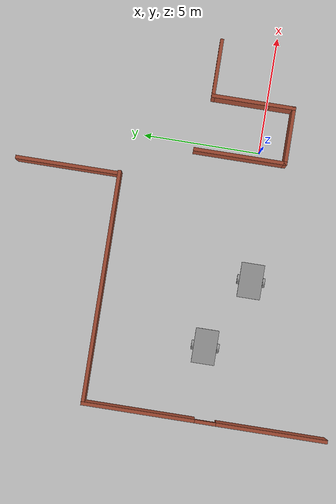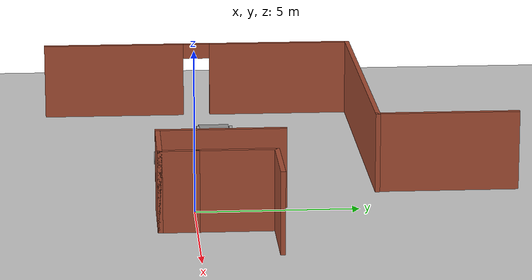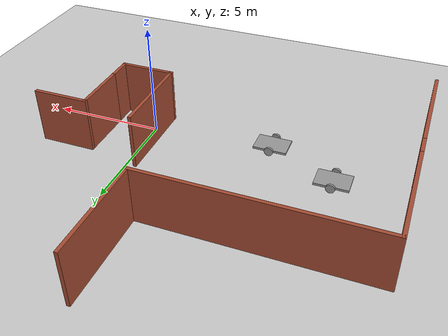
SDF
<sdf version="1.6">
 <world name="default">
  <model name="ground_plane">
   <static>1</static>
   <link name="link">
    <collision name="collision">
     <geometry><plane><normal>0 0 1</normal><size>100 100</size></plane></geometry>
     <surface><friction><ode><mu>100</mu><mu2>50</mu2></ode></friction></surface>
    </collision>
    <visual name="visual">
     <cast_shadows>0</cast_shadows>
     <geometry><plane><normal>0 0 1</normal><size>100 100</size></plane></geometry>
     <material>
      <script><uri>file://media/materials/scripts/gazebo.material</uri><name>Gazebo/Grey</name></script>
     </material>
    </visual>
   </link>
  </model>
  <model name="robot_0">
   <link name="link_0">
    <pose>-8.55663 1 0.2 0 -0 0</pose>
    <inertial>
     <mass>1</mass>
     <inertia>
      <ixx>0.166667</ixx>
      <ixy>0</ixy>
      <ixz>0</ixz>
      <iyy>0.166667</iyy>
      <iyz>0</iyz>
      <izz>0.166667</izz>
     </inertia>
    </inertial>
    <visual name="visual">
     <geometry><box><size>1.5 1 0.1</size></box></geometry>
     <material>
      <lighting>1</lighting>
      <script><uri>file://media/materials/scripts/gazebo.material</uri><name>Gazebo/Grey</name></script>
      <ambient>0.3 0.3 0.3 1</ambient>
      <diffuse>0.7 0.7 0.7 1</diffuse>
      <specular>0.01 0.01 0.01 1</specular>
      <emissive>0 0 0 1</emissive>
      <shader type="vertex"><normal_map>__default__</normal_map></shader>
     </material>
    </visual>
    <collision name="collision">
     <geometry><box><size>1.5 1 0.1</size></box></geometry>
     <surface>
      <friction>
       <ode><mu>1</mu><mu2>1</mu2><fdir1>0 0 0</fdir1><slip1>0</slip1><slip2>0</slip2></ode>
       <torsional>
        <coefficient>1</coefficient>
        <patch_radius>0</patch_radius>
        <surface_radius>0</surface_radius>
        <use_patch_radius>1</use_patch_radius>
        <ode><slip>0</slip></ode>
       </torsional>
      </friction>
      <bounce><restitution_coefficient>0</restitution_coefficient><threshold>1e+06</threshold></bounce>
      <contact>
       <collide_without_contact>0</collide_without_contact>
       <collide_without_contact_bitmask>1</collide_without_contact_bitmask>
       <collide_bitmask>1</collide_bitmask>
       <ode>
        <soft_cfm>0</soft_cfm>
        <soft_erp>0.2</soft_erp>
        <kp>1e+13</kp>
        <kd>1</kd>
        <max_vel>0.01</max_vel>
        <min_depth>0</min_depth>
       </ode>
       <bullet>
        <split_impulse>1</split_impulse>
        <split_impulse_penetration_threshold>-0.01</split_impulse_penetration_threshold>
        <soft_cfm>0</soft_cfm>
        <soft_erp>0.2</soft_erp>
        <kp>1e+13</kp>
        <kd>1</kd>
       </bullet>
      </contact>
     </surface>
    </collision>
   </link>
   <link name="link_1">
    <pose>-8.55663 0.449981 0.2 1.5707 -0 0</pose>
    <inertial>
     <mass>1</mass>
     <inertia><ixx>0.145833</ixx><ixy>0</ixy><ixz>0</ixz><iyy>0.145833</iyy><iyz>0</iyz><izz>0.125</izz></inertia>
    </inertial>
    <visual name="visual">
     <geometry><cylinder><radius>0.2</radius><length>0.1</length></cylinder></geometry>
     <material>
      <lighting>1</lighting>
      <script><uri>file://media/materials/scripts/gazebo.material</uri><name>Gazebo/Grey</name></script>
      <ambient>0.3 0.3 0.3 1</ambient>
      <diffuse>0.7 0.7 0.7 1</diffuse>
      <specular>0.01 0.01 0.01 1</specular>
      <emissive>0 0 0 1</emissive>
      <shader type="vertex"><normal_map>__default__</normal_map></shader>
     </material>
    </visual>
    <collision name="collision">
     <geometry><cylinder><radius>0.2</radius><length>0.1</length></cylinder></geometry>
     <surface>
      <friction>
       <ode><mu>1</mu><mu2>1</mu2><fdir1>0 0 0</fdir1><slip1>0</slip1><slip2>0</slip2></ode>
       <torsional>
        <coefficient>1</coefficient>
        <patch_radius>0</patch_radius>
        <surface_radius>0</surface_radius>
        <use_patch_radius>1</use_patch_radius>
        <ode><slip>0</slip></ode>
       </torsional>
      </friction>
      <bounce><restitution_coefficient>0</restitution_coefficient><threshold>1e+06</threshold></bounce>
      <contact>
       <collide_without_contact>0</collide_without_contact>
       <collide_without_contact_bitmask>1</collide_without_contact_bitmask>
       <collide_bitmask>1</collide_bitmask>
       <ode>
        <soft_cfm>0</soft_cfm>
        <soft_erp>0.2</soft_erp>
        <kp>1e+13</kp>
        <kd>1</kd>
        <max_vel>0.01</max_vel>
        <min_depth>0</min_depth>
       </ode>
       <bullet>
        <split_impulse>1</split_impulse>
        <split_impulse_penetration_threshold>-0.01</split_impulse_penetration_threshold>
        <soft_cfm>0</soft_cfm>
        <soft_erp>0.2</soft_erp>
        <kp>1e+13</kp>
        <kd>1</kd>
       </bullet>
      </contact>
     </surface>
    </collision>
   </link>
   <link name="link_1_clone">
    <pose>-8.55663 1.55002 0.2 1.5707 -0 0</pose>
    <inertial>
     <mass>1</mass>
     <inertia><ixx>0.145833</ixx><ixy>0</ixy><ixz>0</ixz><iyy>0.145833</iyy><iyz>0</iyz><izz>0.125</izz></inertia>
    </inertial>
    <visual name="visual">
     <geometry><cylinder><radius>0.2</radius><length>0.1</length></cylinder></geometry>
     <material>
      <lighting>1</lighting>
      <script><uri>file://media/materials/scripts/gazebo.material</uri><name>Gazebo/Grey</name></script>
      <ambient>0.3 0.3 0.3 1</ambient>
      <diffuse>0.7 0.7 0.7 1</diffuse>
      <specular>0.01 0.01 0.01 1</specular>
      <emissive>0 0 0 1</emissive>
      <shader type="vertex"><normal_map>__default__</normal_map></shader>
     </material>
    </visual>
    <collision name="collision">
     <geometry><cylinder><radius>0.2</radius><length>0.1</length></cylinder></geometry>
     <surface>
      <friction>
       <ode><mu>1</mu><mu2>1</mu2><fdir1>0 0 0</fdir1><slip1>0</slip1><slip2>0</slip2></ode>
       <torsional>
        <coefficient>1</coefficient>
        <patch_radius>0</patch_radius>
        <surface_radius>0</surface_radius>
        <use_patch_radius>1</use_patch_radius>
        <ode><slip>0</slip></ode>
       </torsional>
      </friction>
      <bounce><restitution_coefficient>0</restitution_coefficient><threshold>1e+06</threshold></bounce>
      <contact>
       <collide_without_contact>0</collide_without_contact>
       <collide_without_contact_bitmask>1</collide_without_contact_bitmask>
       <collide_bitmask>1</collide_bitmask>
       <ode>
        <soft_cfm>0</soft_cfm>
        <soft_erp>0.2</soft_erp>
        <kp>1e+13</kp>
        <kd>1</kd>
        <max_vel>0.01</max_vel>
        <min_depth>0</min_depth>
       </ode>
       <bullet>
        <split_impulse>1</split_impulse>
        <split_impulse_penetration_threshold>-0.01</split_impulse_penetration_threshold>
        <soft_cfm>0</soft_cfm>
        <soft_erp>0.2</soft_erp>
        <kp>1e+13</kp>
        <kd>1</kd>
       </bullet>
      </contact>
     </surface>
    </collision>
   </link>
   <link name="link_2">
    <pose>-9 1 0.1 0 -0 0</pose>
    <inertial>
     <mass>1</mass>
     <inertia><ixx>0.1</ixx><ixy>0</ixy><ixz>0</ixz><iyy>0.1</iyy><iyz>0</iyz><izz>0.1</izz></inertia>
    </inertial>
    <visual name="visual">
     <geometry><sphere><radius>0.1</radius></sphere></geometry>
     <material>
      <lighting>1</lighting>
      <script><uri>file://media/materials/scripts/gazebo.material</uri><name>Gazebo/Grey</name></script>
      <ambient>0.3 0.3 0.3 1</ambient>
      <diffuse>0.7 0.7 0.7 1</diffuse>
      <specular>0.01 0.01 0.01 1</specular>
      <emissive>0 0 0 1</emissive>
      <shader type="vertex"><normal_map>__default__</normal_map></shader>
     </material>
    </visual>
    <visual name="ModelPreview_0::link_2::visual_1">
     <geometry><sphere><radius>0.1</radius></sphere></geometry>
     <material>
      <lighting>1</lighting>
      <script><uri>file://media/materials/scripts/gazebo.material</uri><name>Gazebo/Grey</name></script>
      <ambient>0.3 0.3 0.3 1</ambient>
      <diffuse>0.7 0.7 0.7 1</diffuse>
      <specular>0.01 0.01 0.01 1</specular>
      <emissive>0 0 0 1</emissive>
      <shader type="vertex"><normal_map>__default__</normal_map></shader>
     </material>
    </visual>
    <collision name="collision">
     <geometry><sphere><radius>0.1</radius></sphere></geometry>
     <surface>
      <friction>
       <ode><mu>1</mu><mu2>1</mu2><fdir1>0 0 0</fdir1><slip1>0</slip1><slip2>0</slip2></ode>
       <torsional>
        <coefficient>1</coefficient>
        <patch_radius>0</patch_radius>
        <surface_radius>0</surface_radius>
        <use_patch_radius>1</use_patch_radius>
        <ode><slip>0</slip></ode>
       </torsional>
      </friction>
      <bounce><restitution_coefficient>0</restitution_coefficient><threshold>1e+06</threshold></bounce>
      <contact>
       <collide_without_contact>0</collide_without_contact>
       <collide_without_contact_bitmask>1</collide_without_contact_bitmask>
       <collide_bitmask>1</collide_bitmask>
       <ode>
        <soft_cfm>0</soft_cfm>
        <soft_erp>0.2</soft_erp>
        <kp>1e+13</kp>
        <kd>1</kd>
        <max_vel>0.01</max_vel>
        <min_depth>0</min_depth>
       </ode>
       <bullet>
        <split_impulse>1</split_impulse>
        <split_impulse_penetration_threshold>-0.01</split_impulse_penetration_threshold>
        <soft_cfm>0</soft_cfm>
        <soft_erp>0.2</soft_erp>
        <kp>1e+13</kp>
        <kd>1</kd>
       </bullet>
      </contact>
     </surface>
    </collision>
   </link>
   <link name="link_2_clone">
    <pose>-8 1 0.1 0 -0 0</pose>
    <inertial>
     <mass>1</mass>
     <inertia><ixx>0.1</ixx><ixy>0</ixy><ixz>0</ixz><iyy>0.1</iyy><iyz>0</iyz><izz>0.1</izz></inertia>
    </inertial>
    <visual name="visual">
     <geometry><sphere><radius>0.1</radius></sphere></geometry>
     <material>
      <lighting>1</lighting>
      <script><uri>file://media/materials/scripts/gazebo.material</uri><name>Gazebo/Grey</name></script>
      <ambient>0.3 0.3 0.3 1</ambient>
      <diffuse>0.7 0.7 0.7 1</diffuse>
      <specular>0.01 0.01 0.01 1</specular>
      <emissive>0 0 0 1</emissive>
      <shader type="vertex"><normal_map>__default__</normal_map></shader>
     </material>
    </visual>
    <visual name="visual_1">
     <geometry><sphere><radius>0.1</radius></sphere></geometry>
     <material>
      <lighting>1</lighting>
      <script><uri>file://media/materials/scripts/gazebo.material</uri><name>Gazebo/Grey</name></script>
      <ambient>0.3 0.3 0.3 1</ambient>
      <diffuse>0.7 0.7 0.7 1</diffuse>
      <specular>0.01 0.01 0.01 1</specular>
      <emissive>0 0 0 1</emissive>
      <shader type="vertex"><normal_map>__default__</normal_map></shader>
     </material>
    </visual>
    <collision name="collision">
     <geometry><sphere><radius>0.1</radius></sphere></geometry>
     <surface>
      <friction>
       <ode><mu>1</mu><mu2>1</mu2><fdir1>0 0 0</fdir1><slip1>0</slip1><slip2>0</slip2></ode>
       <torsional>
        <coefficient>1</coefficient>
        <patch_radius>0</patch_radius>
        <surface_radius>0</surface_radius>
        <use_patch_radius>1</use_patch_radius>
        <ode><slip>0</slip></ode>
       </torsional>
      </friction>
      <bounce><restitution_coefficient>0</restitution_coefficient><threshold>1e+06</threshold></bounce>
      <contact>
       <collide_without_contact>0</collide_without_contact>
       <collide_without_contact_bitmask>1</collide_without_contact_bitmask>
       <collide_bitmask>1</collide_bitmask>
       <ode>
        <soft_cfm>0</soft_cfm>
        <soft_erp>0.2</soft_erp>
        <kp>1e+13</kp>
        <kd>1</kd>
        <max_vel>0.01</max_vel>
        <min_depth>0</min_depth>
       </ode>
       <bullet>
        <split_impulse>1</split_impulse>
        <split_impulse_penetration_threshold>-0.01</split_impulse_penetration_threshold>
        <soft_cfm>0</soft_cfm>
        <soft_erp>0.2</soft_erp>
        <kp>1e+13</kp>
        <kd>1</kd>
       </bullet>
      </contact>
     </surface>
    </collision>
   </link>
   <joint name="link_0_JOINT_0" type="revolute">
    <parent>link_0</parent>
    <child>link_1</child>
    <axis>
     <xyz>0 0 1</xyz>
     <use_parent_model_frame>0</use_parent_model_frame>
     <limit>
      <lower>-1.79769e+308</lower>
      <upper>1.79769e+308</upper>
      <effort>-1</effort>
      <velocity>-1</velocity>
     </limit>
     <dynamics>
      <spring_reference>0</spring_reference>
      <spring_stiffness>0</spring_stiffness>
      <damping>0</damping>
      <friction>0</friction>
     </dynamics>
    </axis>
    <physics>
     <ode><limit><cfm>0</cfm><erp>0.2</erp></limit><suspension><cfm>0</cfm><erp>0.2</erp></suspension></ode>
    </physics>
   </joint>
   <joint name="link_0_JOINT_1" type="revolute">
    <parent>link_0</parent>
    <child>link_1_clone</child>
    <axis>
     <xyz>0 0 1</xyz>
     <use_parent_model_frame>0</use_parent_model_frame>
     <limit>
      <lower>-1.79769e+308</lower>
      <upper>1.79769e+308</upper>
      <effort>-1</effort>
      <velocity>-1</velocity>
     </limit>
     <dynamics>
      <spring_reference>0</spring_reference>
      <spring_stiffness>0</spring_stiffness>
      <damping>0</damping>
      <friction>0</friction>
     </dynamics>
    </axis>
    <physics>
     <ode><limit><cfm>0</cfm><erp>0.2</erp></limit><suspension><cfm>0</cfm><erp>0.2</erp></suspension></ode>
    </physics>
   </joint>
   <joint name="link_0_JOINT_2" type="revolute">
    <parent>link_0</parent>
    <child>link_2</child>
    <axis>
     <xyz>0 1 0</xyz>
     <use_parent_model_frame>0</use_parent_model_frame>
     <limit>
      <lower>-1.79769e+308</lower>
      <upper>1.79769e+308</upper>
      <effort>-1</effort>
      <velocity>-1</velocity>
     </limit>
     <dynamics>
      <spring_reference>0</spring_reference>
      <spring_stiffness>0</spring_stiffness>
      <damping>0</damping>
      <friction>0</friction>
     </dynamics>
    </axis>
    <physics>
     <ode><limit><cfm>0</cfm><erp>0.2</erp></limit><suspension><cfm>0</cfm><erp>0.2</erp></suspension></ode>
    </physics>
   </joint>
   <joint name="link_0_JOINT_3" type="revolute">
    <parent>link_0</parent>
    <child>link_2_clone</child>
    <axis>
     <xyz>0 1 0</xyz>
     <use_parent_model_frame>0</use_parent_model_frame>
     <limit>
      <lower>-1.79769e+308</lower>
      <upper>1.79769e+308</upper>
      <effort>-1</effort>
      <velocity>-1</velocity>
     </limit>
     <dynamics>
      <spring_reference>0</spring_reference>
      <spring_stiffness>0</spring_stiffness>
      <damping>0</damping>
      <friction>0</friction>
     </dynamics>
    </axis>
    <physics>
     <ode><limit><cfm>0</cfm><erp>0.2</erp></limit><suspension><cfm>0</cfm><erp>0.2</erp></suspension></ode>
    </physics>
   </joint>
   <static>0</static>
   <pose>0.00226 0.01205 -6.2e-05 0 8e-06 0.001422</pose>
  </model>
  <model name="apartment_model">
   <link name="Wall_1">
    <pose>-13.3 2.8 0 0 -0 3.14159</pose>
    <visual name="Wall_1_Visual">
     <pose>0 0 1.25 0 -0 0</pose>
     <geometry><box><size>10 0.15 2.5</size></box></geometry>
     <material>
      <script><uri>file://media/materials/scripts/gazebo.material</uri><name>Gazebo/Bricks</name></script>
      <ambient>1 1 1 1</ambient>
      <diffuse>1 1 1 1</diffuse>
      <specular>0.2 0.2 0.2 1</specular>
      <emissive>0 0 0 1</emissive>
     </material>
    </visual>
    <collision name="Wall_1_Collision">
     <pose>0 0 1.25 0 -0 0</pose>
     <geometry><box><size>10 0.15 2.5</size></box></geometry>
     <surface>
      <friction>
       <ode><mu>1</mu><mu2>1</mu2><fdir1>0 0 0</fdir1><slip1>0</slip1><slip2>0</slip2></ode>
       <torsional>
        <coefficient>1</coefficient>
        <patch_radius>0</patch_radius>
        <surface_radius>0</surface_radius>
        <use_patch_radius>1</use_patch_radius>
        <ode><slip>0</slip></ode>
       </torsional>
      </friction>
      <bounce><restitution_coefficient>0</restitution_coefficient><threshold>1e+06</threshold></bounce>
      <contact>
       <collide_without_contact>0</collide_without_contact>
       <collide_without_contact_bitmask>1</collide_without_contact_bitmask>
       <collide_bitmask>1</collide_bitmask>
       <ode>
        <soft_cfm>0</soft_cfm>
        <soft_erp>0.2</soft_erp>
        <kp>1e+13</kp>
        <kd>1</kd>
        <max_vel>0.01</max_vel>
        <min_depth>0</min_depth>
       </ode>
       <bullet>
        <split_impulse>1</split_impulse>
        <split_impulse_penetration_threshold>-0.01</split_impulse_penetration_threshold>
        <soft_cfm>0</soft_cfm>
        <soft_erp>0.2</soft_erp>
        <kp>1e+13</kp>
        <kd>1</kd>
       </bullet>
      </contact>
     </surface>
    </collision>
   </link>
   <link name="Wall_10">
    <pose>-4.575 -3.5 0 0 0 -1.5708</pose>
    <visual name="Wall_10_Visual">
     <pose>0 0 1.25 0 -0 0</pose>
     <geometry><box><size>1.25 0.15 2.5</size></box></geometry>
     <material>
      <script><uri>file://media/materials/scripts/gazebo.material</uri><name>Gazebo/Bricks</name></script>
      <ambient>1 1 1 1</ambient>
      <diffuse>1 1 1 1</diffuse>
      <specular>0.2 0.2 0.2 1</specular>
      <emissive>0 0 0 1</emissive>
     </material>
    </visual>
    <collision name="Wall_10_Collision">
     <pose>0 0 1.25 0 -0 0</pose>
     <geometry><box><size>1.25 0.15 2.5</size></box></geometry>
     <surface>
      <friction>
       <ode><mu>1</mu><mu2>1</mu2><fdir1>0 0 0</fdir1><slip1>0</slip1><slip2>0</slip2></ode>
       <torsional>
        <coefficient>1</coefficient>
        <patch_radius>0</patch_radius>
        <surface_radius>0</surface_radius>
        <use_patch_radius>1</use_patch_radius>
        <ode><slip>0</slip></ode>
       </torsional>
      </friction>
      <bounce><restitution_coefficient>0</restitution_coefficient><threshold>1e+06</threshold></bounce>
      <contact>
       <collide_without_contact>0</collide_without_contact>
       <collide_without_contact_bitmask>1</collide_without_contact_bitmask>
       <collide_bitmask>1</collide_bitmask>
       <ode>
        <soft_cfm>0</soft_cfm>
        <soft_erp>0.2</soft_erp>
        <kp>1e+13</kp>
        <kd>1</kd>
        <max_vel>0.01</max_vel>
        <min_depth>0</min_depth>
       </ode>
       <bullet>
        <split_impulse>1</split_impulse>
        <split_impulse_penetration_threshold>-0.01</split_impulse_penetration_threshold>
        <soft_cfm>0</soft_cfm>
        <soft_erp>0.2</soft_erp>
        <kp>1e+13</kp>
        <kd>1</kd>
       </bullet>
      </contact>
     </surface>
    </collision>
   </link>
   <link name="Wall_11">
    <pose>-5.75 -4.05 0 0 -0 3.14159</pose>
    <visual name="Wall_11_Visual">
     <pose>0 0 1.25 0 -0 0</pose>
     <geometry><box><size>2.5 0.15 2.5</size></box></geometry>
     <material>
      <script><uri>file://media/materials/scripts/gazebo.material</uri><name>Gazebo/Bricks</name></script>
      <ambient>1 1 1 1</ambient>
      <diffuse>1 1 1 1</diffuse>
      <specular>0.2 0.2 0.2 1</specular>
      <emissive>0 0 0 1</emissive>
     </material>
    </visual>
    <collision name="Wall_11_Collision">
     <pose>0 0 1.25 0 -0 0</pose>
     <geometry><box><size>2.5 0.15 2.5</size></box></geometry>
     <surface>
      <friction>
       <ode><mu>1</mu><mu2>1</mu2><fdir1>0 0 0</fdir1><slip1>0</slip1><slip2>0</slip2></ode>
       <torsional>
        <coefficient>1</coefficient>
        <patch_radius>0</patch_radius>
        <surface_radius>0</surface_radius>
        <use_patch_radius>1</use_patch_radius>
        <ode><slip>0</slip></ode>
       </torsional>
      </friction>
      <bounce><restitution_coefficient>0</restitution_coefficient><threshold>1e+06</threshold></bounce>
      <contact>
       <collide_without_contact>0</collide_without_contact>
       <collide_without_contact_bitmask>1</collide_without_contact_bitmask>
       <collide_bitmask>1</collide_bitmask>
       <ode>
        <soft_cfm>0</soft_cfm>
        <soft_erp>0.2</soft_erp>
        <kp>1e+13</kp>
        <kd>1</kd>
        <max_vel>0.01</max_vel>
        <min_depth>0</min_depth>
       </ode>
       <bullet>
        <split_impulse>1</split_impulse>
        <split_impulse_penetration_threshold>-0.01</split_impulse_penetration_threshold>
        <soft_cfm>0</soft_cfm>
        <soft_erp>0.2</soft_erp>
        <kp>1e+13</kp>
        <kd>1</kd>
       </bullet>
      </contact>
     </surface>
    </collision>
   </link>
   <link name="Wall_14">
    <pose>-6.925 -2.125 0 0 -0 1.5708</pose>
    <visual name="Wall_14_Visual">
     <pose>0 0 1.25 0 -0 0</pose>
     <geometry><box><size>4 0.15 2.5</size></box></geometry>
     <material>
      <script><uri>file://media/materials/scripts/gazebo.material</uri><name>Gazebo/Bricks</name></script>
      <ambient>1 1 1 1</ambient>
      <diffuse>1 1 1 1</diffuse>
      <specular>0.2 0.2 0.2 1</specular>
      <emissive>0 0 0 1</emissive>
     </material>
    </visual>
    <collision name="Wall_14_Collision">
     <pose>0 0 1.25 0 -0 0</pose>
     <geometry><box><size>4 0.15 2.5</size></box></geometry>
     <surface>
      <friction>
       <ode><mu>1</mu><mu2>1</mu2><fdir1>0 0 0</fdir1><slip1>0</slip1><slip2>0</slip2></ode>
       <torsional>
        <coefficient>1</coefficient>
        <patch_radius>0</patch_radius>
        <surface_radius>0</surface_radius>
        <use_patch_radius>1</use_patch_radius>
        <ode><slip>0</slip></ode>
       </torsional>
      </friction>
      <bounce><restitution_coefficient>0</restitution_coefficient><threshold>1e+06</threshold></bounce>
      <contact>
       <collide_without_contact>0</collide_without_contact>
       <collide_without_contact_bitmask>1</collide_without_contact_bitmask>
       <collide_bitmask>1</collide_bitmask>
       <ode>
        <soft_cfm>0</soft_cfm>
        <soft_erp>0.2</soft_erp>
        <kp>1e+13</kp>
        <kd>1</kd>
        <max_vel>0.01</max_vel>
        <min_depth>0</min_depth>
       </ode>
       <bullet>
        <split_impulse>1</split_impulse>
        <split_impulse_penetration_threshold>-0.01</split_impulse_penetration_threshold>
        <soft_cfm>0</soft_cfm>
        <soft_erp>0.2</soft_erp>
        <kp>1e+13</kp>
        <kd>1</kd>
       </bullet>
      </contact>
     </surface>
    </collision>
   </link>
   <link name="Wall_18">
    <pose>-8.425 4.975 0 0 0 -1.5708</pose>
    <visual name="Wall_18_Visual">
     <pose>0 0 1.25 0 -0 0</pose>
     <geometry><box><size>4.5 0.15 2.5</size></box></geometry>
     <material>
      <script><uri>file://media/materials/scripts/gazebo.material</uri><name>Gazebo/Bricks</name></script>
      <ambient>1 1 1 1</ambient>
      <diffuse>1 1 1 1</diffuse>
      <specular>0.2 0.2 0.2 1</specular>
      <emissive>0 0 0 1</emissive>
     </material>
    </visual>
    <collision name="Wall_18_Collision">
     <pose>0 0 1.25 0 -0 0</pose>
     <geometry><box><size>4.5 0.15 2.5</size></box></geometry>
     <surface>
      <friction>
       <ode><mu>1</mu><mu2>1</mu2><fdir1>0 0 0</fdir1><slip1>0</slip1><slip2>0</slip2></ode>
       <torsional>
        <coefficient>1</coefficient>
        <patch_radius>0</patch_radius>
        <surface_radius>0</surface_radius>
        <use_patch_radius>1</use_patch_radius>
        <ode><slip>0</slip></ode>
       </torsional>
      </friction>
      <bounce><restitution_coefficient>0</restitution_coefficient><threshold>1e+06</threshold></bounce>
      <contact>
       <collide_without_contact>0</collide_without_contact>
       <collide_without_contact_bitmask>1</collide_without_contact_bitmask>
       <collide_bitmask>1</collide_bitmask>
       <ode>
        <soft_cfm>0</soft_cfm>
        <soft_erp>0.2</soft_erp>
        <kp>1e+13</kp>
        <kd>1</kd>
        <max_vel>0.01</max_vel>
        <min_depth>0</min_depth>
       </ode>
       <bullet>
        <split_impulse>1</split_impulse>
        <split_impulse_penetration_threshold>-0.01</split_impulse_penetration_threshold>
        <soft_cfm>0</soft_cfm>
        <soft_erp>0.2</soft_erp>
        <kp>1e+13</kp>
        <kd>1</kd>
       </bullet>
      </contact>
     </surface>
    </collision>
   </link>
   <link name="Wall_3">
    <pose>-18.225 -2.375 0 0 0 -1.5708</pose>
    <visual name="Wall_3_Visual_0">
     <pose>-2.83035 0 1.25 0 -0 0</pose>
     <geometry><box><size>4.8393 0.15 2.5</size></box></geometry>
     <material>
      <script><uri>file://media/materials/scripts/gazebo.material</uri><name>Gazebo/Bricks</name></script>
      <ambient>1 1 1 1</ambient>
      <diffuse>1 1 1 1</diffuse>
      <specular>0.2 0.2 0.2 1</specular>
      <emissive>0 0 0 1</emissive>
     </material>
    </visual>
    <visual name="Wall_3_Visual_1">
     <pose>2.86965 0 1.25 0 -0 0</pose>
     <geometry><box><size>4.7607 0.15 2.5</size></box></geometry>
     <material>
      <script><uri>file://media/materials/scripts/gazebo.material</uri><name>Gazebo/Bricks</name></script>
      <ambient>1 1 1 1</ambient>
      <diffuse>1 1 1 1</diffuse>
      <specular>0.2 0.2 0.2 1</specular>
      <emissive>0 0 0 1</emissive>
     </material>
    </visual>
    <visual name="Wall_3_Visual_2">
     <pose>0.039298 0 2.25 0 -0 0</pose>
     <geometry><box><size>0.9 0.15 0.5</size></box></geometry>
     <material>
      <script><uri>file://media/materials/scripts/gazebo.material</uri><name>Gazebo/Bricks</name></script>
      <ambient>1 1 1 1</ambient>
      <diffuse>1 1 1 1</diffuse>
      <specular>0.2 0.2 0.2 1</specular>
      <emissive>0 0 0 1</emissive>
     </material>
    </visual>
    <collision name="Wall_3_Collision_0">
     <pose>-2.83035 0 1.25 0 -0 0</pose>
     <geometry><box><size>4.8393 0.15 2.5</size></box></geometry>
     <surface>
      <friction>
       <ode><mu>1</mu><mu2>1</mu2><fdir1>0 0 0</fdir1><slip1>0</slip1><slip2>0</slip2></ode>
       <torsional>
        <coefficient>1</coefficient>
        <patch_radius>0</patch_radius>
        <surface_radius>0</surface_radius>
        <use_patch_radius>1</use_patch_radius>
        <ode><slip>0</slip></ode>
       </torsional>
      </friction>
      <bounce><restitution_coefficient>0</restitution_coefficient><threshold>1e+06</threshold></bounce>
      <contact>
       <collide_without_contact>0</collide_without_contact>
       <collide_without_contact_bitmask>1</collide_without_contact_bitmask>
       <collide_bitmask>1</collide_bitmask>
       <ode>
        <soft_cfm>0</soft_cfm>
        <soft_erp>0.2</soft_erp>
        <kp>1e+13</kp>
        <kd>1</kd>
        <max_vel>0.01</max_vel>
        <min_depth>0</min_depth>
       </ode>
       <bullet>
        <split_impulse>1</split_impulse>
        <split_impulse_penetration_threshold>-0.01</split_impulse_penetration_threshold>
        <soft_cfm>0</soft_cfm>
        <soft_erp>0.2</soft_erp>
        <kp>1e+13</kp>
        <kd>1</kd>
       </bullet>
      </contact>
     </surface>
    </collision>
    <collision name="Wall_3_Collision_1">
     <pose>2.86965 0 1.25 0 -0 0</pose>
     <geometry><box><size>4.7607 0.15 2.5</size></box></geometry>
     <surface>
      <friction>
       <ode><mu>1</mu><mu2>1</mu2><fdir1>0 0 0</fdir1><slip1>0</slip1><slip2>0</slip2></ode>
       <torsional>
        <coefficient>1</coefficient>
        <patch_radius>0</patch_radius>
        <surface_radius>0</surface_radius>
        <use_patch_radius>1</use_patch_radius>
        <ode><slip>0</slip></ode>
       </torsional>
      </friction>
      <bounce><restitution_coefficient>0</restitution_coefficient><threshold>1e+06</threshold></bounce>
      <contact>
       <collide_without_contact>0</collide_without_contact>
       <collide_without_contact_bitmask>1</collide_without_contact_bitmask>
       <collide_bitmask>1</collide_bitmask>
       <ode>
        <soft_cfm>0</soft_cfm>
        <soft_erp>0.2</soft_erp>
        <kp>1e+13</kp>
        <kd>1</kd>
        <max_vel>0.01</max_vel>
        <min_depth>0</min_depth>
       </ode>
       <bullet>
        <split_impulse>1</split_impulse>
        <split_impulse_penetration_threshold>-0.01</split_impulse_penetration_threshold>
        <soft_cfm>0</soft_cfm>
        <soft_erp>0.2</soft_erp>
        <kp>1e+13</kp>
        <kd>1</kd>
       </bullet>
      </contact>
     </surface>
    </collision>
    <collision name="Wall_3_Collision_2">
     <pose>0.039298 0 2.25 0 -0 0</pose>
     <geometry><box><size>0.9 0.15 0.5</size></box></geometry>
     <surface>
      <friction>
       <ode><mu>1</mu><mu2>1</mu2><fdir1>0 0 0</fdir1><slip1>0</slip1><slip2>0</slip2></ode>
       <torsional>
        <coefficient>1</coefficient>
        <patch_radius>0</patch_radius>
        <surface_radius>0</surface_radius>
        <use_patch_radius>1</use_patch_radius>
        <ode><slip>0</slip></ode>
       </torsional>
      </friction>
      <bounce><restitution_coefficient>0</restitution_coefficient><threshold>1e+06</threshold></bounce>
      <contact>
       <collide_without_contact>0</collide_without_contact>
       <collide_without_contact_bitmask>1</collide_without_contact_bitmask>
       <collide_bitmask>1</collide_bitmask>
       <ode>
        <soft_cfm>0</soft_cfm>
        <soft_erp>0.2</soft_erp>
        <kp>1e+13</kp>
        <kd>1</kd>
        <max_vel>0.01</max_vel>
        <min_depth>0</min_depth>
       </ode>
       <bullet>
        <split_impulse>1</split_impulse>
        <split_impulse_penetration_threshold>-0.01</split_impulse_penetration_threshold>
        <soft_cfm>0</soft_cfm>
        <soft_erp>0.2</soft_erp>
        <kp>1e+13</kp>
        <kd>1</kd>
       </bullet>
      </contact>
     </surface>
    </collision>
   </link>
   <link name="Wall_8">
    <pose>-3.4 -0.6 0 0 -0 3.14159</pose>
    <visual name="Wall_8_Visual">
     <pose>0 0 1.25 0 -0 0</pose>
     <geometry><box><size>2.5 0.15 2.5</size></box></geometry>
     <material>
      <script><uri>file://media/materials/scripts/gazebo.material</uri><name>Gazebo/Bricks</name></script>
      <ambient>1 1 1 1</ambient>
      <diffuse>1 1 1 1</diffuse>
      <specular>0.2 0.2 0.2 1</specular>
      <emissive>0 0 0 1</emissive>
     </material>
    </visual>
    <collision name="Wall_8_Collision">
     <pose>0 0 1.25 0 -0 0</pose>
     <geometry><box><size>2.5 0.15 2.5</size></box></geometry>
     <surface>
      <friction>
       <ode><mu>1</mu><mu2>1</mu2><fdir1>0 0 0</fdir1><slip1>0</slip1><slip2>0</slip2></ode>
       <torsional>
        <coefficient>1</coefficient>
        <patch_radius>0</patch_radius>
        <surface_radius>0</surface_radius>
        <use_patch_radius>1</use_patch_radius>
        <ode><slip>0</slip></ode>
       </torsional>
      </friction>
      <bounce><restitution_coefficient>0</restitution_coefficient><threshold>1e+06</threshold></bounce>
      <contact>
       <collide_without_contact>0</collide_without_contact>
       <collide_without_contact_bitmask>1</collide_without_contact_bitmask>
       <collide_bitmask>1</collide_bitmask>
       <ode>
        <soft_cfm>0</soft_cfm>
        <soft_erp>0.2</soft_erp>
        <kp>1e+13</kp>
        <kd>1</kd>
        <max_vel>0.01</max_vel>
        <min_depth>0</min_depth>
       </ode>
       <bullet>
        <split_impulse>1</split_impulse>
        <split_impulse_penetration_threshold>-0.01</split_impulse_penetration_threshold>
        <soft_cfm>0</soft_cfm>
        <soft_erp>0.2</soft_erp>
        <kp>1e+13</kp>
        <kd>1</kd>
       </bullet>
      </contact>
     </surface>
    </collision>
   </link>
   <link name="Wall_9">
    <pose>-4.575 -1.775 0 0 0 -1.5708</pose>
    <visual name="Wall_9_Visual">
     <pose>0 0 1.25 0 -0 0</pose>
     <geometry><box><size>2.5 0.15 2.5</size></box></geometry>
     <material>
      <script><uri>file://media/materials/scripts/gazebo.material</uri><name>Gazebo/Bricks</name></script>
      <ambient>1 1 1 1</ambient>
      <diffuse>1 1 1 1</diffuse>
      <specular>0.2 0.2 0.2 1</specular>
      <emissive>0 0 0 1</emissive>
     </material>
    </visual>
    <collision name="Wall_9_Collision">
     <pose>0 0 1.25 0 -0 0</pose>
     <geometry><box><size>2.5 0.15 2.5</size></box></geometry>
     <surface>
      <friction>
       <ode><mu>1</mu><mu2>1</mu2><fdir1>0 0 0</fdir1><slip1>0</slip1><slip2>0</slip2></ode>
       <torsional>
        <coefficient>1</coefficient>
        <patch_radius>0</patch_radius>
        <surface_radius>0</surface_radius>
        <use_patch_radius>1</use_patch_radius>
        <ode><slip>0</slip></ode>
       </torsional>
      </friction>
      <bounce><restitution_coefficient>0</restitution_coefficient><threshold>1e+06</threshold></bounce>
      <contact>
       <collide_without_contact>0</collide_without_contact>
       <collide_without_contact_bitmask>1</collide_without_contact_bitmask>
       <collide_bitmask>1</collide_bitmask>
       <ode>
        <soft_cfm>0</soft_cfm>
        <soft_erp>0.2</soft_erp>
        <kp>1e+13</kp>
        <kd>1</kd>
        <max_vel>0.01</max_vel>
        <min_depth>0</min_depth>
       </ode>
       <bullet>
        <split_impulse>1</split_impulse>
        <split_impulse_penetration_threshold>-0.01</split_impulse_penetration_threshold>
        <soft_cfm>0</soft_cfm>
        <soft_erp>0.2</soft_erp>
        <kp>1e+13</kp>
        <kd>1</kd>
       </bullet>
      </contact>
     </surface>
    </collision>
   </link>
   <static>1</static>
   <pose>6.54088 2.94888 0 0 -0 0</pose>
  </model>
  <model name="robot_1">
   <link name="link_0">
    <pose>-8.55663 1 0.2 0 -0 0</pose>
    <inertial>
     <mass>1</mass>
     <inertia>
      <ixx>0.166667</ixx>
      <ixy>0</ixy>
      <ixz>0</ixz>
      <iyy>0.166667</iyy>
      <iyz>0</iyz>
      <izz>0.166667</izz>
     </inertia>
    </inertial>
    <visual name="visual">
     <geometry><box><size>1.5 1 0.1</size></box></geometry>
     <material>
      <lighting>1</lighting>
      <script><uri>file://media/materials/scripts/gazebo.material</uri><name>Gazebo/Grey</name></script>
      <ambient>0.3 0.3 0.3 1</ambient>
      <diffuse>0.7 0.7 0.7 1</diffuse>
      <specular>0.01 0.01 0.01 1</specular>
      <emissive>0 0 0 1</emissive>
      <shader type="vertex"><normal_map>__default__</normal_map></shader>
     </material>
    </visual>
    <collision name="collision">
     <geometry><box><size>1.5 1 0.1</size></box></geometry>
     <surface>
      <friction>
       <ode><mu>1</mu><mu2>1</mu2><fdir1>0 0 0</fdir1><slip1>0</slip1><slip2>0</slip2></ode>
       <torsional>
        <coefficient>1</coefficient>
        <patch_radius>0</patch_radius>
        <surface_radius>0</surface_radius>
        <use_patch_radius>1</use_patch_radius>
        <ode><slip>0</slip></ode>
       </torsional>
      </friction>
      <bounce><restitution_coefficient>0</restitution_coefficient><threshold>1e+06</threshold></bounce>
      <contact>
       <collide_without_contact>0</collide_without_contact>
       <collide_without_contact_bitmask>1</collide_without_contact_bitmask>
       <collide_bitmask>1</collide_bitmask>
       <ode>
        <soft_cfm>0</soft_cfm>
        <soft_erp>0.2</soft_erp>
        <kp>1e+13</kp>
        <kd>1</kd>
        <max_vel>0.01</max_vel>
        <min_depth>0</min_depth>
       </ode>
       <bullet>
        <split_impulse>1</split_impulse>
        <split_impulse_penetration_threshold>-0.01</split_impulse_penetration_threshold>
        <soft_cfm>0</soft_cfm>
        <soft_erp>0.2</soft_erp>
        <kp>1e+13</kp>
        <kd>1</kd>
       </bullet>
      </contact>
     </surface>
    </collision>
   </link>
   <link name="link_1">
    <pose>-8.55663 0.449981 0.2 1.5707 -0 0</pose>
    <inertial>
     <mass>1</mass>
     <inertia><ixx>0.145833</ixx><ixy>0</ixy><ixz>0</ixz><iyy>0.145833</iyy><iyz>0</iyz><izz>0.125</izz></inertia>
    </inertial>
    <visual name="visual">
     <geometry><cylinder><radius>0.2</radius><length>0.1</length></cylinder></geometry>
     <material>
      <lighting>1</lighting>
      <script><uri>file://media/materials/scripts/gazebo.material</uri><name>Gazebo/Grey</name></script>
      <ambient>0.3 0.3 0.3 1</ambient>
      <diffuse>0.7 0.7 0.7 1</diffuse>
      <specular>0.01 0.01 0.01 1</specular>
      <emissive>0 0 0 1</emissive>
      <shader type="vertex"><normal_map>__default__</normal_map></shader>
     </material>
    </visual>
    <collision name="collision">
     <geometry><cylinder><radius>0.2</radius><length>0.1</length></cylinder></geometry>
     <surface>
      <friction>
       <ode><mu>1</mu><mu2>1</mu2><fdir1>0 0 0</fdir1><slip1>0</slip1><slip2>0</slip2></ode>
       <torsional>
        <coefficient>1</coefficient>
        <patch_radius>0</patch_radius>
        <surface_radius>0</surface_radius>
        <use_patch_radius>1</use_patch_radius>
        <ode><slip>0</slip></ode>
       </torsional>
      </friction>
      <bounce><restitution_coefficient>0</restitution_coefficient><threshold>1e+06</threshold></bounce>
      <contact>
       <collide_without_contact>0</collide_without_contact>
       <collide_without_contact_bitmask>1</collide_without_contact_bitmask>
       <collide_bitmask>1</collide_bitmask>
       <ode>
        <soft_cfm>0</soft_cfm>
        <soft_erp>0.2</soft_erp>
        <kp>1e+13</kp>
        <kd>1</kd>
        <max_vel>0.01</max_vel>
        <min_depth>0</min_depth>
       </ode>
       <bullet>
        <split_impulse>1</split_impulse>
        <split_impulse_penetration_threshold>-0.01</split_impulse_penetration_threshold>
        <soft_cfm>0</soft_cfm>
        <soft_erp>0.2</soft_erp>
        <kp>1e+13</kp>
        <kd>1</kd>
       </bullet>
      </contact>
     </surface>
    </collision>
   </link>
   <link name="link_1_clone">
    <pose>-8.55663 1.55002 0.2 1.5707 -0 0</pose>
    <inertial>
     <mass>1</mass>
     <inertia><ixx>0.145833</ixx><ixy>0</ixy><ixz>0</ixz><iyy>0.145833</iyy><iyz>0</iyz><izz>0.125</izz></inertia>
    </inertial>
    <visual name="visual">
     <geometry><cylinder><radius>0.2</radius><length>0.1</length></cylinder></geometry>
     <material>
      <lighting>1</lighting>
      <script><uri>file://media/materials/scripts/gazebo.material</uri><name>Gazebo/Grey</name></script>
      <ambient>0.3 0.3 0.3 1</ambient>
      <diffuse>0.7 0.7 0.7 1</diffuse>
      <specular>0.01 0.01 0.01 1</specular>
      <emissive>0 0 0 1</emissive>
      <shader type="vertex"><normal_map>__default__</normal_map></shader>
     </material>
    </visual>
    <collision name="collision">
     <geometry><cylinder><radius>0.2</radius><length>0.1</length></cylinder></geometry>
     <surface>
      <friction>
       <ode><mu>1</mu><mu2>1</mu2><fdir1>0 0 0</fdir1><slip1>0</slip1><slip2>0</slip2></ode>
       <torsional>
        <coefficient>1</coefficient>
        <patch_radius>0</patch_radius>
        <surface_radius>0</surface_radius>
        <use_patch_radius>1</use_patch_radius>
        <ode><slip>0</slip></ode>
       </torsional>
      </friction>
      <bounce><restitution_coefficient>0</restitution_coefficient><threshold>1e+06</threshold></bounce>
      <contact>
       <collide_without_contact>0</collide_without_contact>
       <collide_without_contact_bitmask>1</collide_without_contact_bitmask>
       <collide_bitmask>1</collide_bitmask>
       <ode>
        <soft_cfm>0</soft_cfm>
        <soft_erp>0.2</soft_erp>
        <kp>1e+13</kp>
        <kd>1</kd>
        <max_vel>0.01</max_vel>
        <min_depth>0</min_depth>
       </ode>
       <bullet>
        <split_impulse>1</split_impulse>
        <split_impulse_penetration_threshold>-0.01</split_impulse_penetration_threshold>
        <soft_cfm>0</soft_cfm>
        <soft_erp>0.2</soft_erp>
        <kp>1e+13</kp>
        <kd>1</kd>
       </bullet>
      </contact>
     </surface>
    </collision>
   </link>
   <link name="link_2">
    <pose>-9 1 0.1 0 -0 0</pose>
    <inertial>
     <mass>1</mass>
     <inertia><ixx>0.1</ixx><ixy>0</ixy><ixz>0</ixz><iyy>0.1</iyy><iyz>0</iyz><izz>0.1</izz></inertia>
    </inertial>
    <visual name="ModelPreview_0::link_2::visual_1">
     <geometry><sphere><radius>0.1</radius></sphere></geometry>
     <material>
      <lighting>1</lighting>
      <script><uri>file://media/materials/scripts/gazebo.material</uri><name>Gazebo/Grey</name></script>
      <ambient>0.3 0.3 0.3 1</ambient>
      <diffuse>0.7 0.7 0.7 1</diffuse>
      <specular>0.01 0.01 0.01 1</specular>
      <emissive>0 0 0 1</emissive>
      <shader type="vertex"><normal_map>__default__</normal_map></shader>
     </material>
    </visual>
    <visual name="visual">
     <geometry><sphere><radius>0.1</radius></sphere></geometry>
     <material>
      <lighting>1</lighting>
      <script><uri>file://media/materials/scripts/gazebo.material</uri><name>Gazebo/Grey</name></script>
      <ambient>0.3 0.3 0.3 1</ambient>
      <diffuse>0.7 0.7 0.7 1</diffuse>
      <specular>0.01 0.01 0.01 1</specular>
      <emissive>0 0 0 1</emissive>
      <shader type="vertex"><normal_map>__default__</normal_map></shader>
     </material>
    </visual>
    <collision name="collision">
     <geometry><sphere><radius>0.1</radius></sphere></geometry>
     <surface>
      <friction>
       <ode><mu>1</mu><mu2>1</mu2><fdir1>0 0 0</fdir1><slip1>0</slip1><slip2>0</slip2></ode>
       <torsional>
        <coefficient>1</coefficient>
        <patch_radius>0</patch_radius>
        <surface_radius>0</surface_radius>
        <use_patch_radius>1</use_patch_radius>
        <ode><slip>0</slip></ode>
       </torsional>
      </friction>
      <bounce><restitution_coefficient>0</restitution_coefficient><threshold>1e+06</threshold></bounce>
      <contact>
       <collide_without_contact>0</collide_without_contact>
       <collide_without_contact_bitmask>1</collide_without_contact_bitmask>
       <collide_bitmask>1</collide_bitmask>
       <ode>
        <soft_cfm>0</soft_cfm>
        <soft_erp>0.2</soft_erp>
        <kp>1e+13</kp>
        <kd>1</kd>
        <max_vel>0.01</max_vel>
        <min_depth>0</min_depth>
       </ode>
       <bullet>
        <split_impulse>1</split_impulse>
        <split_impulse_penetration_threshold>-0.01</split_impulse_penetration_threshold>
        <soft_cfm>0</soft_cfm>
        <soft_erp>0.2</soft_erp>
        <kp>1e+13</kp>
        <kd>1</kd>
       </bullet>
      </contact>
     </surface>
    </collision>
   </link>
   <link name="link_2_clone">
    <pose>-8 1 0.1 0 -0 0</pose>
    <inertial>
     <mass>1</mass>
     <inertia><ixx>0.1</ixx><ixy>0</ixy><ixz>0</ixz><iyy>0.1</iyy><iyz>0</iyz><izz>0.1</izz></inertia>
    </inertial>
    <visual name="visual_1">
     <geometry><sphere><radius>0.1</radius></sphere></geometry>
     <material>
      <lighting>1</lighting>
      <script><uri>file://media/materials/scripts/gazebo.material</uri><name>Gazebo/Grey</name></script>
      <ambient>0.3 0.3 0.3 1</ambient>
      <diffuse>0.7 0.7 0.7 1</diffuse>
      <specular>0.01 0.01 0.01 1</specular>
      <emissive>0 0 0 1</emissive>
      <shader type="vertex"><normal_map>__default__</normal_map></shader>
     </material>
    </visual>
    <visual name="visual">
     <geometry><sphere><radius>0.1</radius></sphere></geometry>
     <material>
      <lighting>1</lighting>
      <script><uri>file://media/materials/scripts/gazebo.material</uri><name>Gazebo/Grey</name></script>
      <ambient>0.3 0.3 0.3 1</ambient>
      <diffuse>0.7 0.7 0.7 1</diffuse>
      <specular>0.01 0.01 0.01 1</specular>
      <emissive>0 0 0 1</emissive>
      <shader type="vertex"><normal_map>__default__</normal_map></shader>
     </material>
    </visual>
    <collision name="collision">
     <geometry><sphere><radius>0.1</radius></sphere></geometry>
     <surface>
      <friction>
       <ode><mu>1</mu><mu2>1</mu2><fdir1>0 0 0</fdir1><slip1>0</slip1><slip2>0</slip2></ode>
       <torsional>
        <coefficient>1</coefficient>
        <patch_radius>0</patch_radius>
        <surface_radius>0</surface_radius>
        <use_patch_radius>1</use_patch_radius>
        <ode><slip>0</slip></ode>
       </torsional>
      </friction>
      <bounce><restitution_coefficient>0</restitution_coefficient><threshold>1e+06</threshold></bounce>
      <contact>
       <collide_without_contact>0</collide_without_contact>
       <collide_without_contact_bitmask>1</collide_without_contact_bitmask>
       <collide_bitmask>1</collide_bitmask>
       <ode>
        <soft_cfm>0</soft_cfm>
        <soft_erp>0.2</soft_erp>
        <kp>1e+13</kp>
        <kd>1</kd>
        <max_vel>0.01</max_vel>
        <min_depth>0</min_depth>
       </ode>
       <bullet>
        <split_impulse>1</split_impulse>
        <split_impulse_penetration_threshold>-0.01</split_impulse_penetration_threshold>
        <soft_cfm>0</soft_cfm>
        <soft_erp>0.2</soft_erp>
        <kp>1e+13</kp>
        <kd>1</kd>
       </bullet>
      </contact>
     </surface>
    </collision>
   </link>
   <joint name="link_0_JOINT_0" type="revolute">
    <parent>link_0</parent>
    <child>link_1</child>
    <axis>
     <xyz>0 0 1</xyz>
     <use_parent_model_frame>0</use_parent_model_frame>
     <limit>
      <lower>-1.79769e+308</lower>
      <upper>1.79769e+308</upper>
      <effort>-1</effort>
      <velocity>-1</velocity>
     </limit>
     <dynamics>
      <spring_reference>0</spring_reference>
      <spring_stiffness>0</spring_stiffness>
      <damping>0</damping>
      <friction>0</friction>
     </dynamics>
    </axis>
    <physics>
     <ode><limit><cfm>0</cfm><erp>0.2</erp></limit><suspension><cfm>0</cfm><erp>0.2</erp></suspension></ode>
    </physics>
   </joint>
   <joint name="link_0_JOINT_1" type="revolute">
    <parent>link_0</parent>
    <child>link_1_clone</child>
    <axis>
     <xyz>0 0 1</xyz>
     <use_parent_model_frame>0</use_parent_model_frame>
     <limit>
      <lower>-1.79769e+308</lower>
      <upper>1.79769e+308</upper>
      <effort>-1</effort>
      <velocity>-1</velocity>
     </limit>
     <dynamics>
      <spring_reference>0</spring_reference>
      <spring_stiffness>0</spring_stiffness>
      <damping>0</damping>
      <friction>0</friction>
     </dynamics>
    </axis>
    <physics>
     <ode><limit><cfm>0</cfm><erp>0.2</erp></limit><suspension><cfm>0</cfm><erp>0.2</erp></suspension></ode>
    </physics>
   </joint>
   <joint name="link_0_JOINT_2" type="revolute">
    <parent>link_0</parent>
    <child>link_2</child>
    <axis>
     <xyz>0 1 0</xyz>
     <use_parent_model_frame>0</use_parent_model_frame>
     <limit>
      <lower>-1.79769e+308</lower>
      <upper>1.79769e+308</upper>
      <effort>-1</effort>
      <velocity>-1</velocity>
     </limit>
     <dynamics>
      <spring_reference>0</spring_reference>
      <spring_stiffness>0</spring_stiffness>
      <damping>0</damping>
      <friction>0</friction>
     </dynamics>
    </axis>
    <physics>
     <ode><limit><cfm>0</cfm><erp>0.2</erp></limit><suspension><cfm>0</cfm><erp>0.2</erp></suspension></ode>
    </physics>
   </joint>
   <joint name="link_0_JOINT_3" type="revolute">
    <parent>link_0</parent>
    <child>link_2_clone</child>
    <axis>
     <xyz>0 1 0</xyz>
     <use_parent_model_frame>0</use_parent_model_frame>
     <limit>
      <lower>-1.79769e+308</lower>
      <upper>1.79769e+308</upper>
      <effort>-1</effort>
      <velocity>-1</velocity>
     </limit>
     <dynamics>
      <spring_reference>0</spring_reference>
      <spring_stiffness>0</spring_stiffness>
      <damping>0</damping>
      <friction>0</friction>
     </dynamics>
    </axis>
    <physics>
     <ode><limit><cfm>0</cfm><erp>0.2</erp></limit><suspension><cfm>0</cfm><erp>0.2</erp></suspension></ode>
    </physics>
   </joint>
   <static>0</static>
   <pose>3.08323 -1.49578 0 0 -0 0</pose>
  </model>
 </world>
</sdf>
